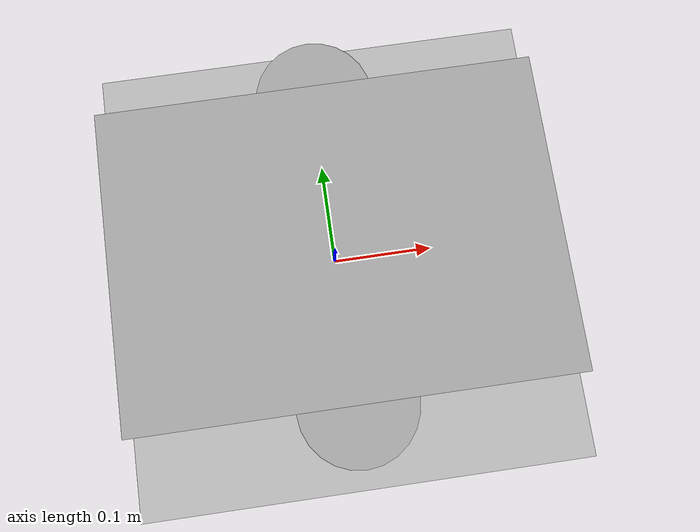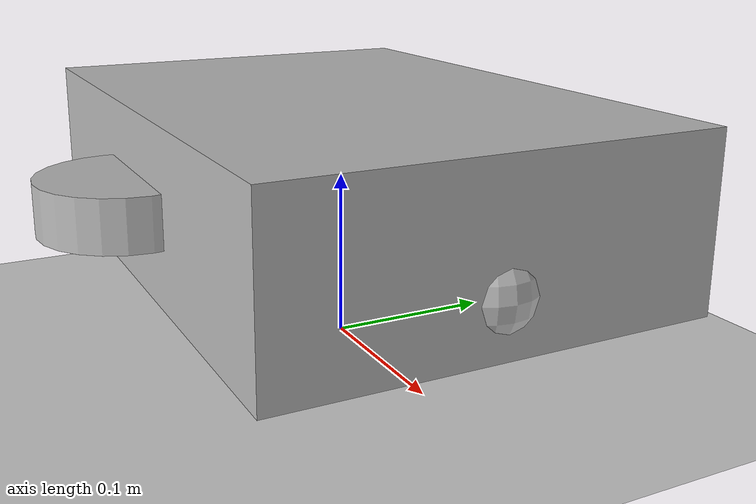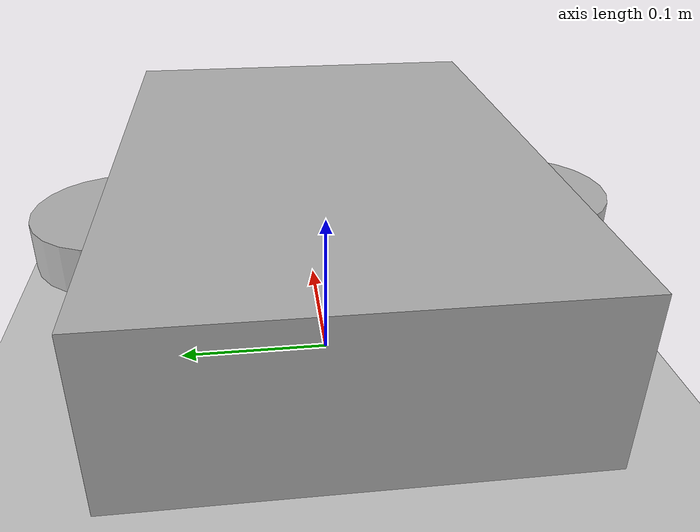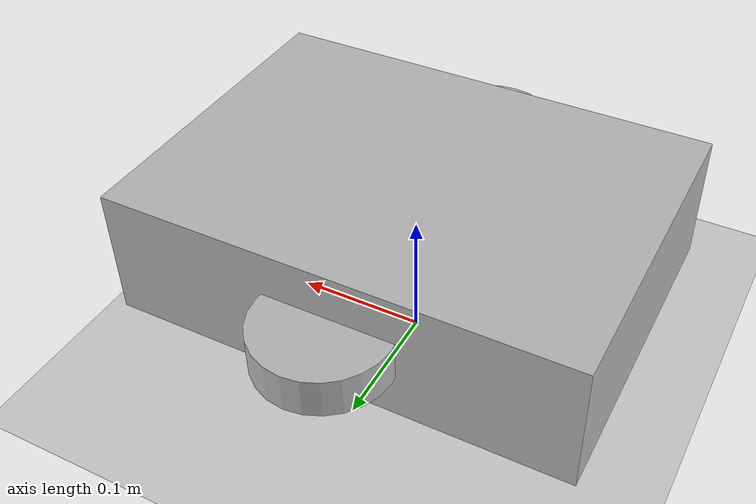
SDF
<?xml version="1.0" ?>
<sdf version="1.9">
  <world name="three_wheel_world">
    <gravity>0 0 -9.81</gravity>
    <physics name="ode" type="ode">
      <real_time_update_rate>1000</real_time_update_rate>
      <max_step_size>0.001</max_step_size>
      <ode><solver><type>quick</type><iters>50</iters></solver></ode>
    </physics>

    <include><uri>model://ground_plane</uri></include>
    <include><uri>model://sun</uri></include>

    <!-- Spawn robot -->
    <include><uri>file://three_wheel_bot.sdf</uri></include>

    <gui fullscreen="false"/>
  </world>
</sdf>

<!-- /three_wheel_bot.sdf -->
<sdf version="1.9">
  <model name="three_wheel_bot">
    <pose>0 0 0.05 0 0 0</pose>
    <static>false</static>

    <!-- Base -->
    <link name="base_link">
      <pose>0 0 0.05 0 0 0</pose>
      <inertial>
        <mass>6.0</mass>
        <inertia>
          <ixx>0.12</ixx><iyy>0.12</iyy><izz>0.2</izz>
        </inertia>
      </inertial>
      <collision name="base_collision">
        <geometry><box><size>0.35 0.25 0.1</size></box></geometry>
      </collision>
      <visual name="base_visual">
        <geometry><box><size>0.35 0.25 0.1</size></box></geometry>
      </visual>
    </link>

    <!-- Wheels -->
    <link name="left_wheel">
      <pose>0 -0.13 0.05 0 0 0</pose>
      <inertial><mass>0.6</mass><inertia><ixx>0.002</ixx><iyy>0.004</iyy><izz>0.004</izz></inertia></inertial>
      <collision name="left_wheel_collision"><geometry><cylinder><radius>0.05</radius><length>0.03</length></cylinder></geometry></collision>
      <visual name="left_wheel_visual"><geometry><cylinder><radius>0.05</radius><length>0.03</length></cylinder></geometry></visual>
    </link>

    <link name="right_wheel">
      <pose>0 0.13 0.05 0 0 0</pose>
      <inertial><mass>0.6</mass><inertia><ixx>0.002</ixx><iyy>0.004</iyy><izz>0.004</izz></inertia></inertial>
      <collision name="right_wheel_collision"><geometry><cylinder><radius>0.05</radius><length>0.03</length></cylinder></geometry></collision>
      <visual name="right_wheel_visual"><geometry><cylinder><radius>0.05</radius><length>0.03</length></cylinder></geometry></visual>
    </link>

    <!-- Front caster -->
    <link name="front_caster">
      <pose>0.15 0 0.03 0 0 0</pose>
      <inertial><mass>0.3</mass><inertia><ixx>0.001</ixx><iyy>0.001</iyy><izz>0.001</izz></inertia></inertial>
      <collision name="caster_collision"><geometry><sphere><radius>0.03</radius></sphere></geometry></collision>
      <visual name="caster_visual"><geometry><sphere><radius>0.03</radius></sphere></geometry></visual>
    </link>

    <!-- Joints -->
    <joint name="left_wheel_joint" type="revolute">
      <parent>base_link</parent><child>left_wheel</child>
      <axis><xyz>0 1 0</xyz><dynamics><damping>0.01</damping></dynamics></axis>
    </joint>

    <joint name="right_wheel_joint" type="revolute">
      <parent>base_link</parent><child>right_wheel</child>
      <axis><xyz>0 1 0</xyz><dynamics><damping>0.01</damping></dynamics></axis>
    </joint>

    <joint name="caster_joint" type="revolute">
      <parent>base_link</parent><child>front_caster</child>
      <axis><xyz>0 0 1</xyz><dynamics><damping>0.05</damping></dynamics></axis>
    </joint>

    <!-- Sensor mount -->
    <link name="sensor_mount">
      <pose>0.12 0 0.14 0 0 0</pose>
      <inertial><mass>0.2</mass><inertia><ixx>0.0005</ixx><iyy>0.0005</iyy><izz>0.0005</izz></inertia></inertial>

      <!-- IMU -->
      <sensor name="imu" type="imu">
        <update_rate>200</update_rate>
        <always_on>true</always_on>
        <plugin name="imu_plugin" filename="gz-sensors-imu-system"><topic>/imu/data</topic></plugin>
      </sensor>

      <!-- RGB camera -->
      <sensor name="camera" type="camera">
        <update_rate>30</update_rate>
        <camera><horizontal_fov>1.047</horizontal_fov><image><width>640</width><height>480</height><format>R8G8B8</format></image><clip><near>0.05</near><far>50</far></clip></camera>
        <plugin name="camera_plugin" filename="gz-sensors-camera-system"><topic>/camera/image_raw</topic></plugin>
      </sensor>

      <!-- Planar LiDAR (proximity) -->
      <sensor name="lidar" type="gpu_lidar">
        <update_rate>20</update_rate>
        <ray>
          <scan><horizontal><samples>360</samples><min_angle>-1.57</min_angle><max_angle>1.57</max_angle></horizontal></scan>
          <range><min>0.02</min><max>12.0</max></range>
        </ray>
        <plugin name="lidar_plugin" filename="gz-sensors-gpu-lidar-system"><topic>/scan</topic></plugin>
      </sensor>
    </link>

    <joint name="sensor_mount_joint" type="fixed"><parent>base_link</parent><child>sensor_mount</child></joint>

    <!-- Differential drive plugin (Ignition/Gazebo garden style) -->
    <plugin name="diff_drive" filename="gz-sim-diff-drive-system">
      <left_joint>left_wheel_joint</left_joint>
      <right_joint>right_wheel_joint</right_joint>
      <wheel_separation>0.26</wheel_separation>
      <wheel_radius>0.05</wheel_radius>
      <cmd_vel_topic>/cmd_vel</cmd_vel_topic>
      <odom_topic>/odom</odom_topic>
      <odom_publish_frequency>50</odom_publish_frequency>
      <robot_base_frame>base_link</robot_base_frame>
    </plugin>

  </model>
</sdf>
